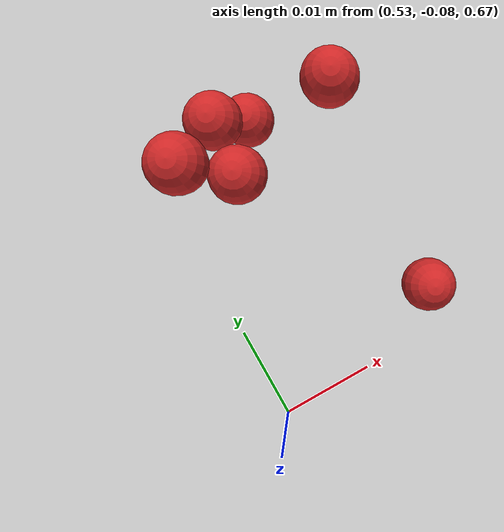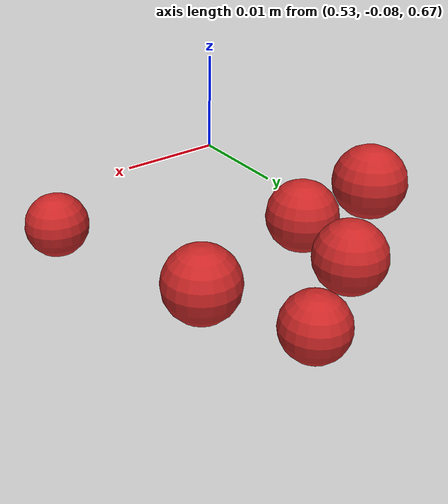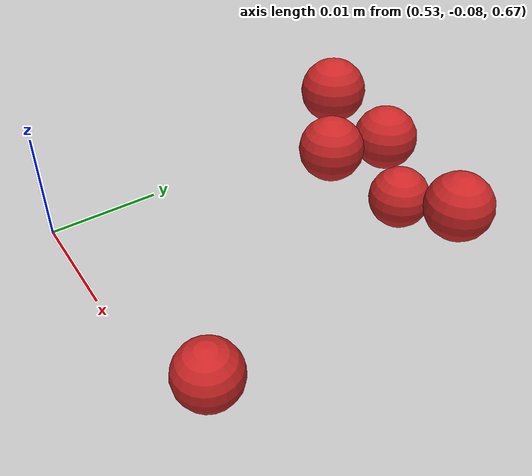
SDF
<sdf version="1.4">
 <world name="default">
  <model name="ground_plane">
   <static>1</static>
   <link name="link">
    <collision name="collision">
     <geometry><plane><normal>0 0 1</normal><size>100 100</size></plane></geometry>
     <surface><friction><ode><mu>100</mu><mu2>50</mu2></ode></friction></surface>
    </collision>
    <visual name="visual">
     <cast_shadows>0</cast_shadows>
     <geometry><plane><normal>0 0 1</normal><size>100 100</size></plane></geometry>
     <material>
      <script><uri>file://media/materials/scripts/gazebo.material</uri><name>Gazebo/Grey</name></script>
     </material>
    </visual>
    <velocity_decay><linear>0</linear><angular>0</angular></velocity_decay>
   </link>
  </model>
  <model name="sphere6">
   <pose>-0.012521 -0.013986 -0.058935 -0.002324 -0.002503 -0.000765</pose>
   <link name="link">
    <pose>0.55276 -0.042781 0.732288 0 -0 0</pose>
    <inertial>
     <mass>0.0000001</mass>
     <inertia><ixx>0.00004</ixx><ixy>0</ixy><ixz>0</ixz><iyy>0.00004</iyy><iyz>0</iyz><izz>0.00004</izz></inertia>
    </inertial>
    <collision name="collision">
     <surface>
      <contact><ode><kp>1e+10</kp><kd>1</kd></ode></contact>
      <friction><ode><mu>0.01</mu><mu2>0.01</mu2></ode></friction>
     </surface>
     <geometry><sphere><radius>0.003</radius></sphere></geometry>
    </collision>
    <visual name="visual">
     <geometry><sphere><radius>0.003</radius></sphere></geometry>
     <material>
      <script><uri>file://media/materials/scripts/gazebo.material</uri><name>Gazebo/Red</name></script>
     </material>
    </visual>
    <velocity_decay><linear>0</linear><angular>0</angular></velocity_decay>
   </link>
   <static>0</static>
  </model>
  <model name="sphere18">
   <pose>-0.012784 -0.014512 -0.060514 0.016222 0.014455 -0.000565</pose>
   <link name="link">
    <pose>0.55276 -0.048781 0.738288 0 -0 0</pose>
    <inertial>
     <mass>0.0000001</mass>
     <inertia><ixx>0.00004</ixx><ixy>0</ixy><ixz>0</ixz><iyy>0.00004</iyy><iyz>0</iyz><izz>0.00004</izz></inertia>
    </inertial>
    <collision name="collision">
     <surface>
      <contact><ode><kp>1e+10</kp><kd>1</kd></ode></contact>
      <friction><ode><mu>0.01</mu><mu2>0.01</mu2></ode></friction>
     </surface>
     <geometry><sphere><radius>0.003</radius></sphere></geometry>
    </collision>
    <visual name="visual">
     <geometry><sphere><radius>0.003</radius></sphere></geometry>
     <material>
      <script><uri>file://media/materials/scripts/gazebo.material</uri><name>Gazebo/Red</name></script>
     </material>
    </visual>
    <velocity_decay><linear>0</linear><angular>0</angular></velocity_decay>
   </link>
   <static>0</static>
  </model>
  <model name="sphere59">
   <pose>-0.012719 -0.020737 -0.084872 -0.012925 -0.005462 -0.003042</pose>
   <link name="link">
    <pose>0.55876 -0.036781 0.750288 0 -0 0</pose>
    <inertial>
     <mass>0.0000001</mass>
     <inertia><ixx>0.00004</ixx><ixy>0</ixy><ixz>0</ixz><iyy>0.00004</iyy><iyz>0</iyz><izz>0.00004</izz></inertia>
    </inertial>
    <collision name="collision">
     <surface>
      <contact><ode><kp>1e+10</kp><kd>1</kd></ode></contact>
      <friction><ode><mu>0.01</mu><mu2>0.01</mu2></ode></friction>
     </surface>
     <geometry><sphere><radius>0.003</radius></sphere></geometry>
    </collision>
    <visual name="visual">
     <geometry><sphere><radius>0.003</radius></sphere></geometry>
     <material>
      <script><uri>file://media/materials/scripts/gazebo.material</uri><name>Gazebo/Red</name></script>
     </material>
    </visual>
    <velocity_decay><linear>0</linear><angular>0</angular></velocity_decay>
   </link>
   <static>0</static>
  </model>
  <model name="sphere89">
   <pose>-0.009749 -0.015437 -0.08706 -0.003764 0.00234 -9.7e-05</pose>
   <link name="link">
    <pose>0.54676 -0.036781 0.762288 0 -0 0</pose>
    <inertial>
     <mass>0.0000001</mass>
     <inertia><ixx>0.00004</ixx><ixy>0</ixy><ixz>0</ixz><iyy>0.00004</iyy><iyz>0</iyz><izz>0.00004</izz></inertia>
    </inertial>
    <collision name="collision">
     <surface>
      <contact><ode><kp>1e+10</kp><kd>1</kd></ode></contact>
      <friction><ode><mu>0.01</mu><mu2>0.01</mu2></ode></friction>
     </surface>
     <geometry><sphere><radius>0.003</radius></sphere></geometry>
    </collision>
    <visual name="visual">
     <geometry><sphere><radius>0.003</radius></sphere></geometry>
     <material>
      <script><uri>file://media/materials/scripts/gazebo.material</uri><name>Gazebo/Red</name></script>
     </material>
    </visual>
    <velocity_decay><linear>0</linear><angular>0</angular></velocity_decay>
   </link>
   <static>0</static>
  </model>
  <model name="sphere141">
   <pose>-0.01295 -0.016422 -0.101843 0.003173 0.000741 -0.005071</pose>
   <link name="link">
    <pose>0.54676 -0.030781 0.780288 0 -0 0</pose>
    <inertial>
     <mass>0.0000001</mass>
     <inertia><ixx>0.00004</ixx><ixy>0</ixy><ixz>0</ixz><iyy>0.00004</iyy><iyz>0</iyz><izz>0.00004</izz></inertia>
    </inertial>
    <collision name="collision">
     <surface>
      <contact><ode><kp>1e+10</kp><kd>1</kd></ode></contact>
      <friction><ode><mu>0.01</mu><mu2>0.01</mu2></ode></friction>
     </surface>
     <geometry><sphere><radius>0.003</radius></sphere></geometry>
    </collision>
    <visual name="visual">
     <geometry><sphere><radius>0.003</radius></sphere></geometry>
     <material>
      <script><uri>file://media/materials/scripts/gazebo.material</uri><name>Gazebo/Red</name></script>
     </material>
    </visual>
    <velocity_decay><linear>0</linear><angular>0</angular></velocity_decay>
   </link>
   <static>0</static>
  </model>
  <model name="sphere151">
   <pose>-0.011664 -0.013149 -0.108691 -0.002786 0.004827 0.003782</pose>
   <link name="link">
    <pose>0.55876 -0.042781 0.786288 0 -0 0</pose>
    <inertial>
     <mass>0.0000001</mass>
     <inertia><ixx>0.00004</ixx><ixy>0</ixy><ixz>0</ixz><iyy>0.00004</iyy><iyz>0</iyz><izz>0.00004</izz></inertia>
    </inertial>
    <collision name="collision">
     <surface>
      <contact><ode><kp>1e+10</kp><kd>1</kd></ode></contact>
      <friction><ode><mu>0.01</mu><mu2>0.01</mu2></ode></friction>
     </surface>
     <geometry><sphere><radius>0.003</radius></sphere></geometry>
    </collision>
    <visual name="visual">
     <geometry><sphere><radius>0.003</radius></sphere></geometry>
     <material>
      <script><uri>file://media/materials/scripts/gazebo.material</uri><name>Gazebo/Red</name></script>
     </material>
    </visual>
    <velocity_decay><linear>0</linear><angular>0</angular></velocity_decay>
   </link>
   <static>0</static>
  </model>
 </world>
</sdf>
